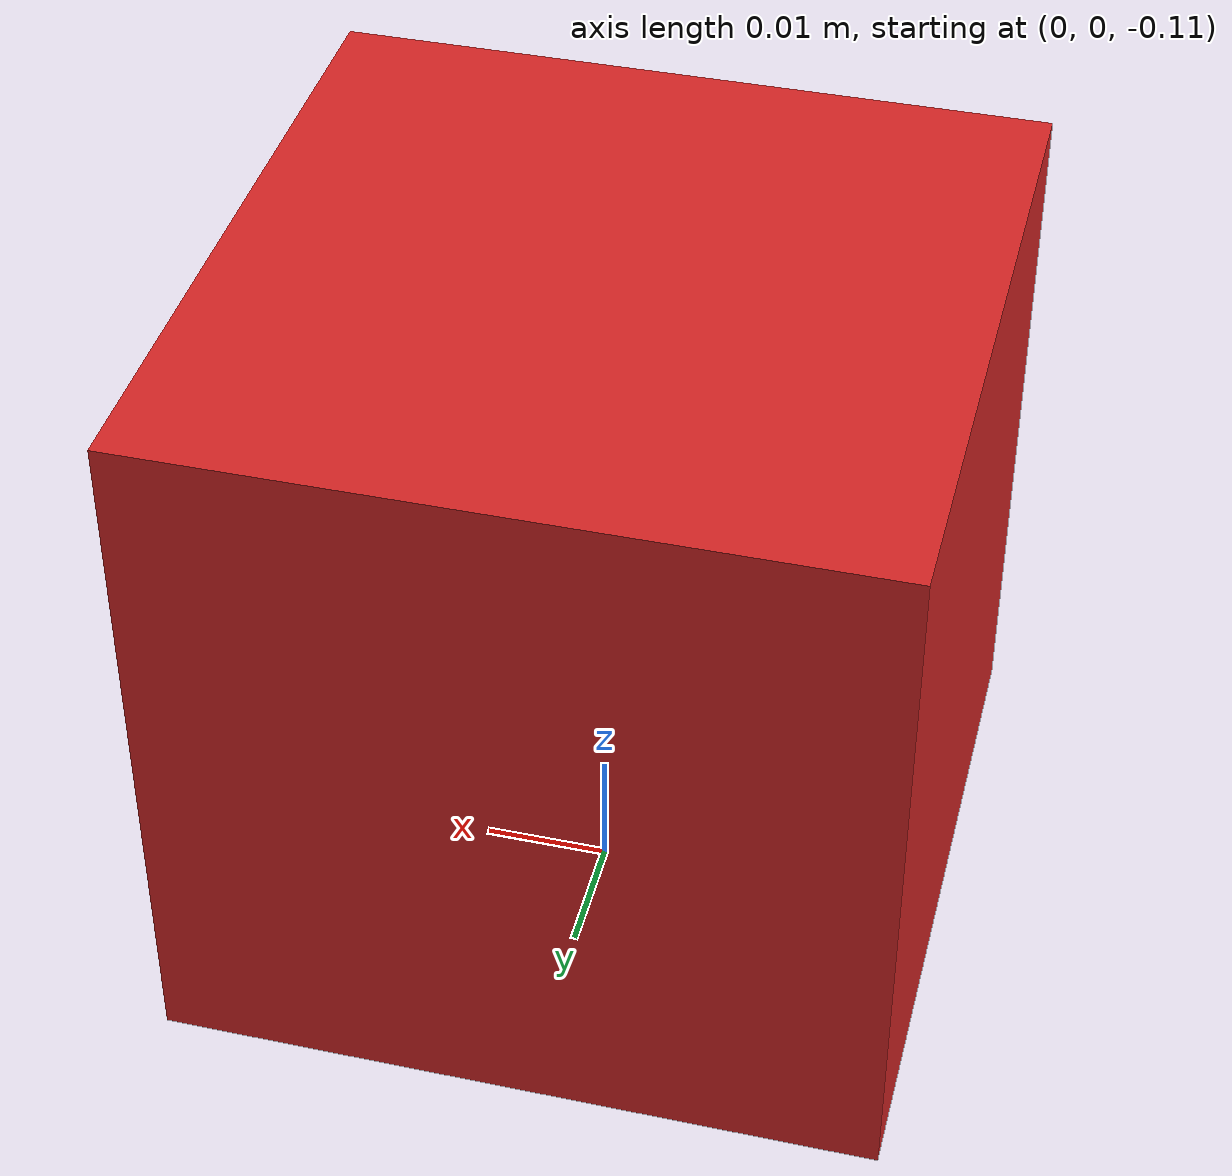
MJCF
<mujoco model="cube_56mm">
  <!-- 56x56x56mm 정육면체 (3x3 스피드큐브 규격)
       x,y 슬라이드 조인트만 있어서 높이(z)와 회전은 고정,
       중력에 의한 낙하 없이 바닥에 놓인 것처럼 위치만 바뀜.
       z=-0.08m: 4손가락이 완전히 오므렸을 때 손끝이 모이는 실측 높이
       (mesh/텍스처 파일 의존성 없음) -->
  <default>
    <default class="cube">
      <geom friction="1.0 0.01 0.001" conaffinity="2" condim="4"/>
    </default>
  </default>

  <worldbody>
    <body name="cube" pos="0 0 -0.08" quat="1 0 0 0" childclass="cube">
      <joint name="cube_slide_x" type="slide" axis="1 0 0" damping="0.5"/>
      <joint name="cube_slide_y" type="slide" axis="0 1 0" damping="0.5"/>
      <geom name="cube" type="box" size="0.028 0.028 0.028" mass="0.07"
            group="2" rgba="0.85 0.15 0.15 1"/>
      <site name="cube_center" pos="0 0 0" group="4" size="0.001"/>
    </body>
  </worldbody>
</mujoco>
